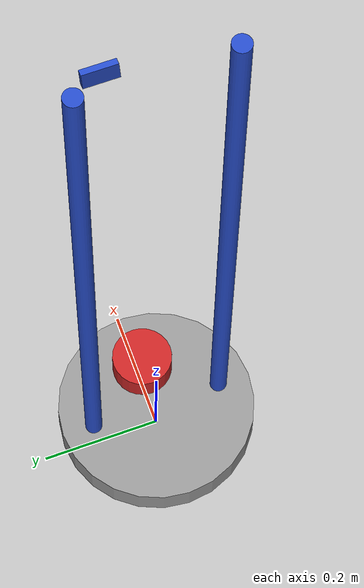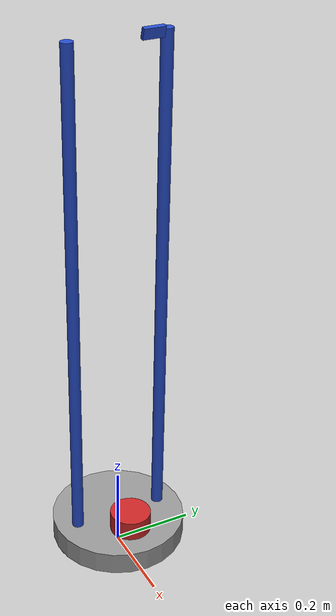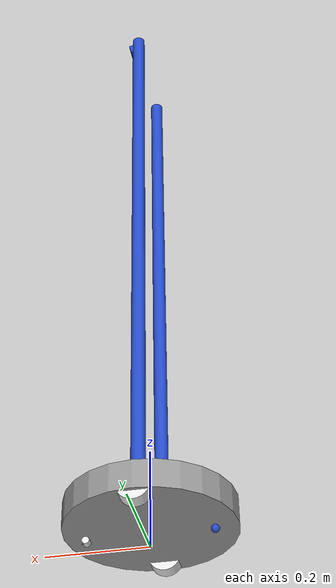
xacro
<?xml version="1.0"?>

<robot name="create"
    xmlns:sensor="http://playerstage.sourceforge.net/gazebo/xmlschema/#sensor"
    xmlns:controller="http://playerstage.sourceforge.net/gazebo/xmlschema/#controller"
    xmlns:interface="http://playerstage.sourceforge.net/gazebo/xmlschema/#interface">

    <!-- Included URDF Files -->
    <include filename="$(find irobotron_description)/urdf/create_base.xacro" />

    <create />
</robot>

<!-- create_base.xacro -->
<robot
    xmlns:sensor="http://playerstage.sourceforge.net/gazebo/xmlschema/#sensor"
    xmlns:controller="http://playerstage.sourceforge.net/gazebo/xmlschema/#controller"
    xmlns:interface="http://playerstage.sourceforge.net/gazebo/xmlschema/#interface">

    <!-- Included URDF Files -->
    <include filename="$(find irobotron_description)/urdf/materials.urdf.xacro" />
    <include filename="$(find irobotron_description)/urdf/create_wheel.xacro" />
    <include filename="$(find irobotron_description)/urdf/create_torso.xacro" />

    <!-- Properties (Constants) -->
    <property name="M_PI" value="3.14159"/>

    <property name="wheel_radius" value="0.032" />
    <property name="wheel_length" value="0.02" />
    <property name="wheel_reflect" value="0.70" />

    <property name="camera_down_tilt_rads" value="0.25" />

    <macro name="create">
        <!-- base_footprint is a fictitious link(frame) that is on the ground right below base_link origin,
             navigation stack depends on this frame -->
        <link name="base_footprint">
            <inertial>
                <mass value="0.0001" />
                <origin xyz="0 0 0" />
                <inertia ixx="0.0001" ixy="0.0" ixz="0.0"
                         iyy="0.0001" iyz="0.0"
                         izz="0.0001" />
            </inertial>

            <visual>
                <origin xyz="0 0 0" />
                <geometry>
                    <box size="0.001 0.001 0.001" />
                </geometry>
                <material name="Green" />
            </visual>

            <collision>
                <origin xyz="0 0 ${baseheight/2 + wheel_radius}" rpy="0 0 0" />
                <geometry>
                  <box size="0.001 0.001 0.001" />
                </geometry>
            </collision>
        </link>

        <joint name="base_footprint_joint" type="fixed">
            <origin xyz="0 0 ${baseheight/2 + wheel_radius}" rpy="0 0 0" />
            <parent link="base_footprint"/>
            <child link="base_link" />
        </joint>

        <!-- Links and Joints (i.e., the robot) -->

        <robot_base linkname="base_link">
        </robot_base>
        <gazebo reference="base_link">
          <material>Gazebo/White</material>
        </gazebo>

        <joint name="rear_wheel_joint" type="continuous" >
            <origin xyz="-0.12 0 -0.035" rpy="0 0 0" />
            <parent link="base_link" />
            <child link="rear_wheel_link"/>
            <axis xyz="0 1 0" />
            <anchor xyz="0 0 0" />
            <limit effort="10" velocity="100" k_velocity="0" />
            <joint_properties damping="0.0" friction="0.0" />
        </joint>

        <link name="rear_wheel_link">
            <inertial>
                <mass value="0.001"/>
                <origin xyz="0 0 0" />
                <inertia  ixx="0.012411765597" ixy="-0.000711733678" ixz="0.00050272983"
                          iyy="0.015218160428" iyz="-0.000004273467"
                          izz="0.011763977943" />
            </inertial>

            <visual>
                <origin xyz="0 0 0" rpy="${M_PI/2} 0 0" />
                <geometry>
                    <sphere radius="0.008" />
                </geometry>
                <material name="Blue" />
            </visual>

            <collision>
                <origin xyz="0 0 0" rpy="${M_PI/2} 0 0" />
                <geometry>
                    <sphere radius="0.008" />
                </geometry>
            </collision>
        </link>

        <gazebo reference="rear_wheel_link">
            <elem key="mu1" value="10.0" />
            <elem key="mu2" value="10.0" />
            <elem key="kp"  value="1000000.0" />
            <elem key="kd"  value="1.0" />
        </gazebo>

        <transmission type="pr2_mechanism_model/SimpleTransmission" name="rear_wheel_trans">
            <actuator name="rear_wheel_motor" />
            <joint name="rear_wheel_joint" />
            <mechanicalReduction>1.0</mechanicalReduction>
        </transmission>

        <joint name="base_caster_support_joint" type="continuous">
            <origin xyz="0.13 0 -0.023" rpy="0 0 0" />
            <parent link="base_link" />
            <child link="base_caster_support_link"/>

            <axis xyz="0 0 1" />
            <anchor xyz="0.01 0 0" />
            <limit effort="100" velocity="100" k_velocity="0" />
            <joint_properties damping="0.0" friction="0.0" />
        </joint>

        <transmission type="pr2_mechanism_model/SimpleTransmission" name="base_caster_wheel_trans">
            <actuator name="base_caster_wheel_motor" />
            <joint name="base_caster_support_joint" />
            <mechanicalReduction>1.0</mechanicalReduction>
        </transmission>

        <link name="base_caster_support_link">
            <inertial>
                <mass value="25.0"/>
                <origin xyz="0 0 0" />
                <inertia ixx="0.01" ixy="0.0" ixz="0.0"
                         iyy="0.01" iyz="0.0"
                         izz="0.01" />
            </inertial>

            <visual>
                <origin xyz="0.0 0.0 0.0" rpy="0 0 0" />
                <geometry>
                    <cylinder radius="0.001" length="0.037" />
                </geometry>
            </visual>

            <collision>
                <origin xyz="0.0 0.0 0.0" rpy="0 0 0" />
                <geometry>
                    <cylinder radius="0.001" length="0.037" />
                </geometry>
            </collision>
        </link>

        <joint name="caster_wheel_joint" type="continuous">
            <origin xyz="-0.008 0 -0.0130" rpy="0 0 0" />
            <parent link="base_caster_support_link" />
            <child link="caster_wheel_link" />

            <axis xyz="0 1 0" />
            <anchor xyz="0 0 0" />
            <limit effort="100" velocity="100" k_velocity="0" />
            <joint_properties damping="0.0" friction="0.0" />
        </joint>

        <transmission type="pr2_mechanism_model/SimpleTransmission" name="caster_wheel_trans">
            <actuator name="caster_wheel_motor" />
            <joint name="caster_wheel_joint" />
            <mechanicalReduction>1.0</mechanicalReduction>
        </transmission>

        <link name="caster_wheel_link">
            <inertial>
                <mass value="1.0" />
                <origin xyz="0 0 0" rpy="0 0 0" />
                <inertia  ixx="0.012411765597" ixy="-0.000711733678" ixz="0.00050272983"
                          iyy="0.015218160428" iyz="-0.000004273467"
                          izz="0.011763977943" />
            </inertial>

            <visual>
                <origin xyz="0 0 0" rpy="${M_PI/2} 0 0" />
                <geometry>
                    <cylinder radius="0.007" length="0.015" />
                </geometry>
            </visual>

            <collision>
            <origin xyz="0 0 0" rpy="${M_PI/2} 0 0" />
            <geometry>
                    <cylinder radius="0.007" length="0.015" />
            </geometry>
            </collision>
        </link>

        <gazebo reference="caster_wheel_link">
            <elem key="mu1" value="50.0" />
            <elem key="mu2" value="50.0" />
            <elem key="kp"  value="1000000.0" />
            <elem key="kd"  value="1.0" />
        </gazebo>

        <!-- MACRO INSTANTIATION -->

        <create_wheel suffix="left" parent="base_link" reflect="${wheel_reflect}"/>
        <create_wheel suffix="right" parent="base_link" reflect="${wheel_reflect * -1.0}"/>

        <robot_link linkname="lefttorso" linklength="${torsolength}">
        </robot_link>
        <gazebo reference="lefttorso">
          <material>Gazebo/Blue</material>
        </gazebo>
        <robot_base_joint jointname="robot_base_joint_l" linkparent="base_link" linkchild="lefttorso">
          <origin xyz="0 0.111 ${baseheight/2}" rpy="0 0 0" />
        </robot_base_joint>

        <robot_link linkname="righttorso" linklength="${torsolength}">
        </robot_link>
        <gazebo reference="righttorso">
          <material>Gazebo/Blue</material>
        </gazebo>
        <robot_base_joint jointname="robot_base_joint_r" linkparent="base_link" linkchild="righttorso">
          <origin xyz="0 -0.111 ${baseheight/2}" rpy="0 0 0" />
        </robot_base_joint>

        <!-- CONTROLLERS -->

        <gazebo>
            <controller:diffdrive_plugin name="differential_drive_controller" plugin="libdiffdrive_plugin.so">
                <alwaysOn>true</alwaysOn>
                <update>100</update>
                <updateRate>100.0</updateRate>
                <leftJoint>base_link_right_wheel_joint</leftJoint>
                <rightJoint>base_link_left_wheel_joint</rightJoint>
                <wheelSeparation>${2.0 * wheel_reflect * (baseradius + 0.0125 + 0.025)}</wheelSeparation>
                <wheelDiameter>${wheel_radius*2}</wheelDiameter>
                <torque>50</torque>
                <interface:position name="position_iface_0"/>
                <robotNamespace>/</robotNamespace>
                <topicName>cmd_vel</topicName>
            </controller:diffdrive_plugin>

            <controller:gazebo_ros_p3d name="p3d_base_controller" plugin="libgazebo_ros_p3d.so">
                <alwaysOn>true</alwaysOn>
                <updateRate>100.0</updateRate>
                <bodyName>base_link</bodyName>
                <topicName>base_pose_ground_truth</topicName>
                <gaussianNoise>0.01</gaussianNoise>
                <frameName>map</frameName>
                <xyzOffsets>0 0 0</xyzOffsets>
                <rpyOffsets>0 0 0</rpyOffsets>
                <interface:position name="p3d_base_position"/>
            </controller:gazebo_ros_p3d>

            <canonicalBody>base_footprint</canonicalBody>

            <controller:gazebo_ros_controller_manager name="gazebo_ros_controller_manager" plugin="libgazebo_ros_controller_manager.so">
                <alwaysOn>true</alwaysOn>
                <updateRate>100.0</updateRate>
                <interface:audio name="gazebo_ros_controller_manager_dummy_iface" />
            </controller:gazebo_ros_controller_manager>
        </gazebo>

        <!-- GAZEBO MATERIALS -->

        <gazebo reference="base_link">
            <material>Create/GreyTextured</material>
        </gazebo>

        <gazebo reference="rear_wheel_link">
            <material>Create/Black</material>
        </gazebo>

        <gazebo reference="caster_wheel_link">
            <material>Create/White</material>
        </gazebo>

        <gazebo reference="base_caster_box_link">
            <material>Create/White</material>
        </gazebo>

        <gazebo reference="base_caster_support_link">
            <material>Create/White</material>
        </gazebo>

        <!-- CAMERAS -->

        <!-- stereo_left_camera -->
        <joint name="stereo_left_camera_joint" type="fixed">
          <origin xyz="0.02 -0.042 ${torsolength}" rpy="0 ${camera_down_tilt_rads} 0" />
          <parent link="lefttorso" />
          <child link="stereo_left_camera_link"/>
        </joint>
        <link name="stereo_left_camera_link">
          <inertial>
            <mass value="0.01" />
            <origin xyz="0 0 0" />
            <inertia ixx="0.001"  ixy="0.0"  ixz="0.0"
                     iyy="0.001"  iyz="0.0"
                     izz="0.001" />
          </inertial>
          <visual>
            <origin xyz="0 0 0" rpy="0 0 0"/>
            <geometry>
              <box size="0.01 0.05 0.025" />
            </geometry>
          </visual>
          <collision>
            <origin xyz="0 0 0" rpy="0 0 0"/>
            <geometry>
              <box size="0.01 0.05 0.025" />
            </geometry>
          </collision>
        </link>

        <gazebo reference="stereo_left_camera_link">
          <sensor:camera name="stereo_left_camera_sensor">
            <imageSize>352 288</imageSize>
            <imageFormat>L8</imageFormat>
            <hfov>45</hfov>
            <nearClip>0.1</nearClip>
            <farClip>100</farClip>
            <updateRate>10.0</updateRate>
            <controller:gazebo_ros_camera name="camera_controller" plugin="libgazebo_ros_camera.so">
              <alwaysOn>true</alwaysOn>
              <updateRate>10.0</updateRate>
              <cameraName>stereo</cameraName>
              <imageTopicName>left/image_rect</imageTopicName>
              <cameraInfoTopicName>left/camera_info</cameraInfoTopicName>
              <frameName>stereo_left_camera_link</frameName>
              <CxPrime>196.30799999999999</CxPrime>
              <Cx>170.184</Cx>
              <Cy>138.3720000000000</Cy>
              <Fx>434.66199999999998</Fx>
              <Fy>431.84800000000001</Fy>
              <!-- image_width / (2*tan(hfov_radian /2)) -->
              <focal_length>424.901587</focal_length>
            </controller:gazebo_ros_camera>
          </sensor:camera>
          <turnGravityOff>true</turnGravityOff>
          <material>Gazebo/Blue</material>
        </gazebo>

        <joint name="stereo_left_optical_joint" type="fixed">
          <origin xyz="0 0 0" rpy="${-M_PI/2} 0 ${-M_PI/2}" />
          <parent link="stereo_left_camera_link" />
          <child link="stereo_left_optical_frame"/>
        </joint>
        <link name="stereo_left_optical_frame">
          <inertial>
            <mass value="0.01" />
            <origin xyz="0 0 0" />
            <inertia ixx="0.001"  ixy="0.0"  ixz="0.0"
                     iyy="0.001"  iyz="0.0"
                     izz="0.001" />
          </inertial>
          <visual>
            <origin xyz="0 0 0" rpy="0 0 0"/>
            <geometry>
              <box size="0.001 0.001 0.001" />
            </geometry>
          </visual>
          <collision>
            <origin xyz="0 0 0" rpy="0 0 0"/>
            <geometry>
              <box size="0.001 0.001 0.001" />
            </geometry>
          </collision>
        </link>

        <!-- LASER -->

        <joint name="base_laser_joint" type="fixed">
          <origin rpy="0 0 0" xyz="0.07 0.0 ${baseheight}"/>
          <parent link="base_link"/>
          <child link="base_laser_link"/>
        </joint>

        <link name="base_laser_link" type="laser">
          <inertial>
            <mass value="0.1"/>
            <origin xyz="0 0 0.0"/>
            <inertia ixx="0.1" ixy="0" ixz="0" iyy="0.1" iyz="0" izz="0.1"/>
          </inertial>

          <visual>
            <origin rpy="0 0 0" xyz="0 0 0.0"/>
            <geometry>
              <cylinder radius=".05" length=".05"/>
            </geometry>
          </visual>

          <collision>
            <origin rpy="0 0 0" xyz="0 0 0.0"/>
            <geometry>
              <cylinder radius=".05" length=".05"/>
            </geometry>
          </collision>
        </link>

        <gazebo reference="base_laser_link">
          <sensor:ray name="base_laser_link">
            <resRange>0.1</resRange>
            <rayCount>640</rayCount>
            <rangeCount>640</rangeCount>
            <laserCount>1</laserCount>
            <origin>0.0 0.0 0.0</origin>
            <displayRays>true</displayRays>

            <minAngle>-100</minAngle> <!-- scans own arms if -135~+135 -->
            <maxAngle>100</maxAngle>

            <minRange>0.07</minRange>
            <maxRange>10.0</maxRange>
            <updateRate>20.0</updateRate>
            <controller:gazebo_ros_laser name="gazebo_ros_base_laser_link_controller" plugin="libgazebo_ros_laser.so">
              <gaussianNoise>0.005</gaussianNoise>
              <alwaysOn>true</alwaysOn>
              <updateRate>20.0</updateRate>
              <topicName>base_scan</topicName>
              <frameName>base_laser_link</frameName>
              <interface:laser name="gazebo_ros_base_laser_link_iface"/>
            </controller:gazebo_ros_laser>
          </sensor:ray>
          <material>Gazebo/Red</material>
        </gazebo>

    </macro>
</robot>

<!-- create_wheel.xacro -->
<robot
    xmlns:sensor="http://playerstage.sourceforge.net/gazebo/xmlschema/#sensor"
    xmlns:controller="http://playerstage.sourceforge.net/gazebo/xmlschema/#controller"
    xmlns:interface="http://playerstage.sourceforge.net/gazebo/xmlschema/#interface">

    <!-- Properties (Constants) -->
    <property name="M_PI" value="3.14159"/>
    <property name="wheel_offset_z" value="-0.0128" />

    <macro name="create_wheel" params="suffix parent reflect">
        <joint name="${parent}_${suffix}_motor_joint" type="fixed">
            <origin xyz="0 ${reflect*baseradius} ${wheel_offset_z}" rpy="0 0 0" />
            <parent link="${parent}" />
            <child link="${parent}_${suffix}_motor_link" />
        </joint>

        <link name="${parent}_${suffix}_motor_link">
            <inertial>
                <mass value="0.1" />
                <origin xyz=" 0 ${reflect*0.0125} 0 " />
                <inertia  ixx="0.012411765597" ixy="0.0" ixz="0.0"
                          iyy="0.015218160428" iyz="0.0"
                          izz="0.011763977943" />
            </inertial>

            <visual>
                <origin xyz="0 ${reflect*0.0125} 0" rpy="${M_PI/2} 0 0" />
                <geometry>
                    <cylinder radius="0.009" length="0.025" />
                </geometry>
            </visual>

            <collision>
                <origin xyz="0 ${reflect*0.0125} 0" rpy="${M_PI/2} 0 0" />
                <geometry>
                    <cylinder radius="0.009" length="0.025" />
                </geometry>
            </collision>
        </link>

        <joint name="${parent}_${suffix}_wheel_joint" type="continuous">
            <origin xyz="0 ${reflect*0.025} 0" rpy="0 0 0" />
            <axis xyz="0 1 0" />
            <anchor xyz="0 0 0" />
            <limit effort="100" velocity="100" />
            <joint_properties damping="0.0" friction="0.0" />
            <parent link="${parent}_${suffix}_motor_link" />
            <child link="${parent}_${suffix}_wheel_link" />
        </joint>

        <link name="${parent}_${suffix}_wheel_link">
            <inertial>
                <mass value="5" />
                <origin xyz=" 0 0 0 " />
                <inertia  ixx="0.012411765597" ixy="0.0" ixz="0.0"
                          iyy="0.015218160428" iyz="0.0"
                          izz="0.011763977943" />
            </inertial>

            <visual>
                <origin xyz="0 ${reflect*0.0125} 0" rpy="${M_PI/2} 0 0" />
                <geometry>
                    <cylinder radius="${wheel_radius}" length="0.03" />
                </geometry>
                <material name="White" />
            </visual>

            <collision>
                <origin xyz="0 ${reflect*0.0125} 0" rpy="${M_PI/2} 0 0" />
                <geometry>
                    <cylinder radius="${wheel_radius}" length="0.03" />
                </geometry>
            </collision>
        </link>

        <gazebo reference="${parent}_${suffix}_wheel_link" >
            <elem key="mu1" value="50.0" />
            <elem key="mu2" value="50.0" />
            <elem key="kp"  value="100000000.0" />
            <elem key="kd"  value="1.0" />
            <material>Create/Green</material>
        </gazebo>

        <gazebo reference="${parent}_${suffix}_motor_link" >
            <material>Create/White</material>
        </gazebo>

        <transmission type="pr2_mechanism_model/SimpleTransmission" name="${parent}_${suffix}_wheel_trans">
            <actuator name="${parent}_${suffix}_wheel_motor" />
            <joint name="${parent}_${suffix}_wheel_joint" />
            <mechanicalReduction>1.0</mechanicalReduction>
        </transmission>
    </macro>
</robot>

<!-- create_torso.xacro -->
<robot xmlns:xacro="http://ros.org/wiki/xacro"
       name="robot_in_simulation">
<xacro:property name="lineardensity" value="0.4732" />
<xacro:property name="linkradius" value="0.0141" />
<xacro:property name="torsolength" value="1.2192" />
<xacro:property name="upperarmlength" value="0.3048" />
<xacro:property name="lowerarmlength" value="0.2540" />
<xacro:property name="pi" value="3.141592654" />
<xacro:property name="basemass" value="3" />
<xacro:property name="baseheight" value="0.056"/>
<xacro:property name="baseradius" value="0.164975" />

<!-- Base Link Macro Definition -->
<xacro:macro name="robot_base" params="linkname">
  <link name="${linkname}">
    <inertial>
      <origin xyz="0 0 0" rpy="0 0 0" />
      <mass value="${basemass}" />
      <inertia ixx="${(1/12) * (basemass) * (baseheight * baseheight) + (1/4) * (basemass) * (baseradius * baseradius)}"
	       ixy="0"
	       ixz="0"
	       iyy="${(1/12) * (basemass) * (baseheight * baseheight) + (1/4) * (basemass) * (baseradius * baseradius)}"
	       iyz="0"
	       izz="${(1/2) * (basemass) * (baseradius * baseradius)}" />
    </inertial>
    <visual>
      <origin xyz="0 0 0" rpy="0 0 0" />
      <geometry>
	     <cylinder radius="${baseradius}" length="${baseheight}" />
      </geometry>
    </visual>
    <collision>
      <origin xyz="0 0 0" rpy="0 0 0" />
      <geometry>
        <cylinder radius="${baseradius}" length="${baseheight}" />
      </geometry>
    </collision>
  </link>
</xacro:macro>

<!-- Base Joint Macro Definition -->
<xacro:macro name="robot_base_joint" params="jointname linkparent linkchild *origin">
  <joint name="${jointname}" type="fixed">
    <xacro:insert_block name="origin" />
    <parent link="${linkparent}" />
    <child link="${linkchild}" />
  </joint>
</xacro:macro>

<!-- Joint Macro Definition -->
<xacro:macro name="robot_joint" params="jointname linkparent linkchild *origin">
  <joint name="${jointname}" type="continuous">
    <xacro:insert_block name="origin" />
    <parent link="${linkparent}" />
    <child link="${linkchild}" />
    <axis xyz="0 1 0" />
  </joint>
</xacro:macro>

<!-- Link Macro Definition -->
<xacro:macro name="robot_link" params="linkname linklength">
  <link name="${linkname}">
    <inertial>
      <origin xyz="0 0 ${linklength/2}" rpy="0 0 0" />
      <mass value="${linklength * lineardensity}" />
      <inertia ixx="${(1/12) * (linklength * lineardensity) * (linklength * linklength) + (1/4) * (linklength * lineardensity) * (linkradius * linkradius)}"
	       ixy="0"
	       ixz="0"
	       iyy="${(1/12) * (linklength * lineardensity) * (linklength * linklength) + (1/4) * (linklength * lineardensity) * (linkradius * linkradius)}"
	       iyz="0"
	       izz="${(1/2) * (linklength * lineardensity) * (linkradius * linkradius)}" />
    </inertial>
    <visual>
      <origin xyz="0 0 ${linklength/2}" rpy="0 0 0" />
      <geometry>
	<cylinder radius="${linkradius}" length="${linklength}" />
      </geometry>
    </visual>
    <collision>
      <origin xyz="0 0 ${linklength/2}" rpy="0 0 0" />
      <geometry>
        <cylinder radius="${linkradius}" length="${linklength}" />
      </geometry>
    </collision>
  </link>
</xacro:macro>

</robot>
